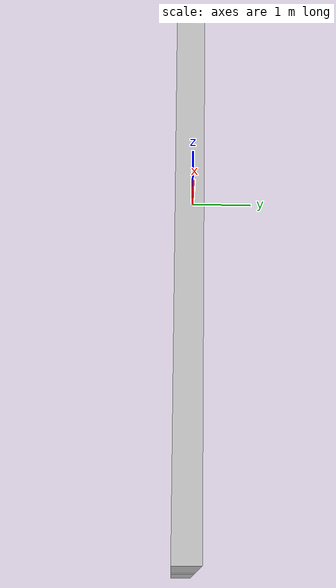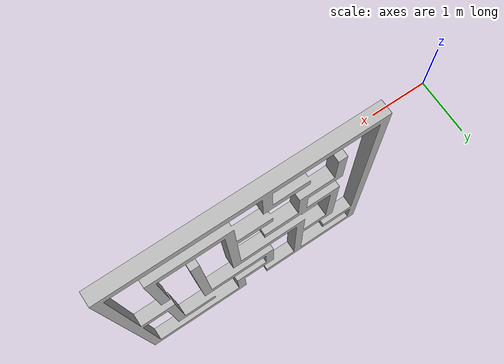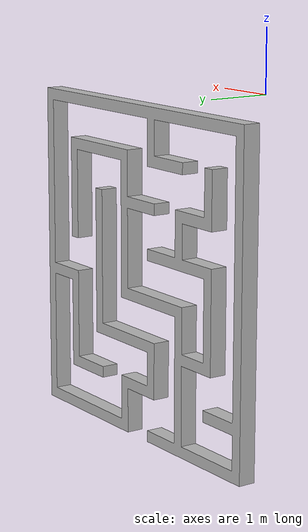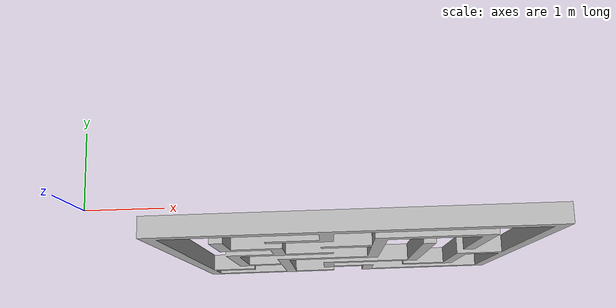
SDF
<?xml version="1.0" ?>
<sdf version="1.6">
  <model name="maze11">
    <pose>0 0 0 1.5708 0 0</pose>
    <static>true</static>
    <link name="link">
      <collision name="collision">
        <geometry>
          <mesh>
            <scale>0.001 0.001 0.001</scale>
            <uri>model://maze11/meshes/maze11.stl</uri>
          </mesh>
        </geometry>
      </collision>
      <visual name="visual">
        <geometry>

          <mesh>
            <scale>0.001 0.001 0.001</scale>
            <uri>model://maze11/meshes/maze11.stl</uri>
          </mesh>
        </geometry>
      </visual>
    </link>
  </model>
</sdf>
